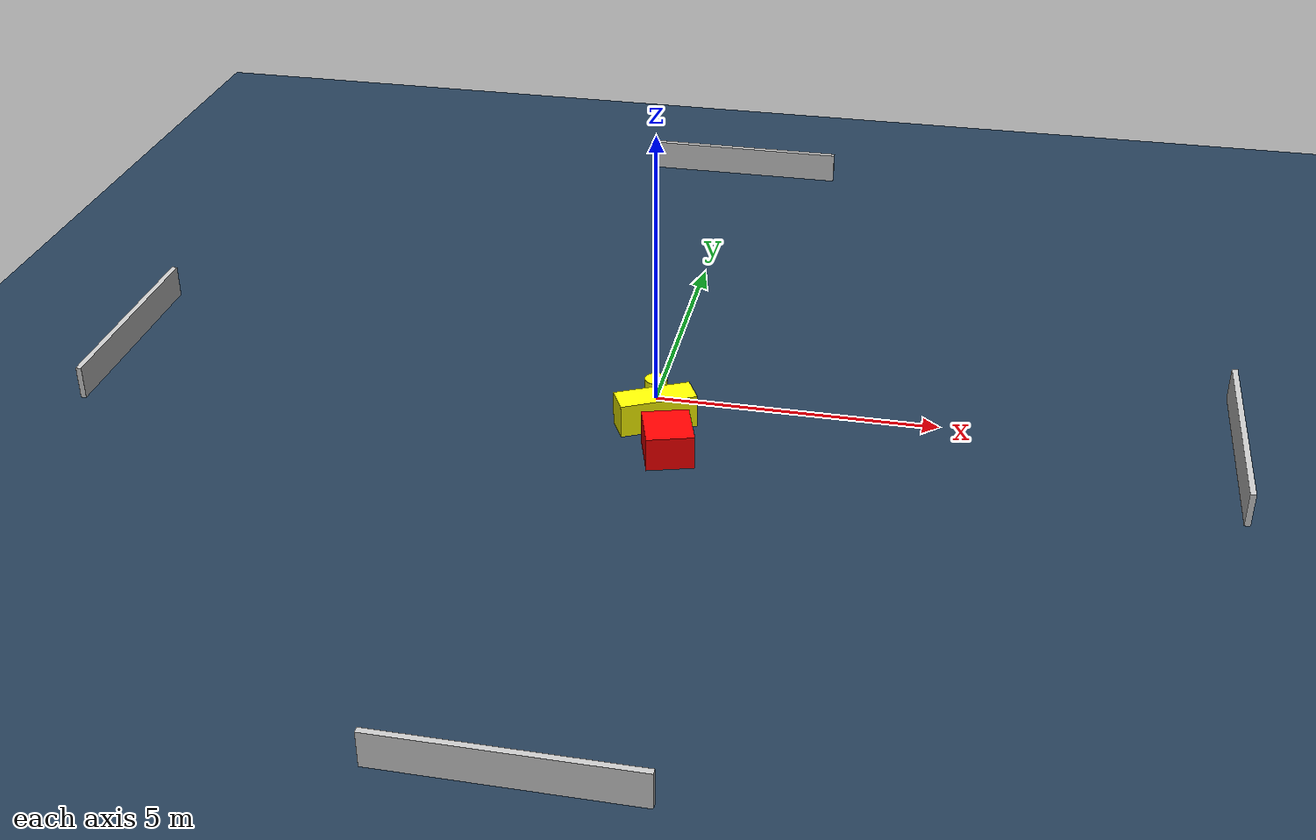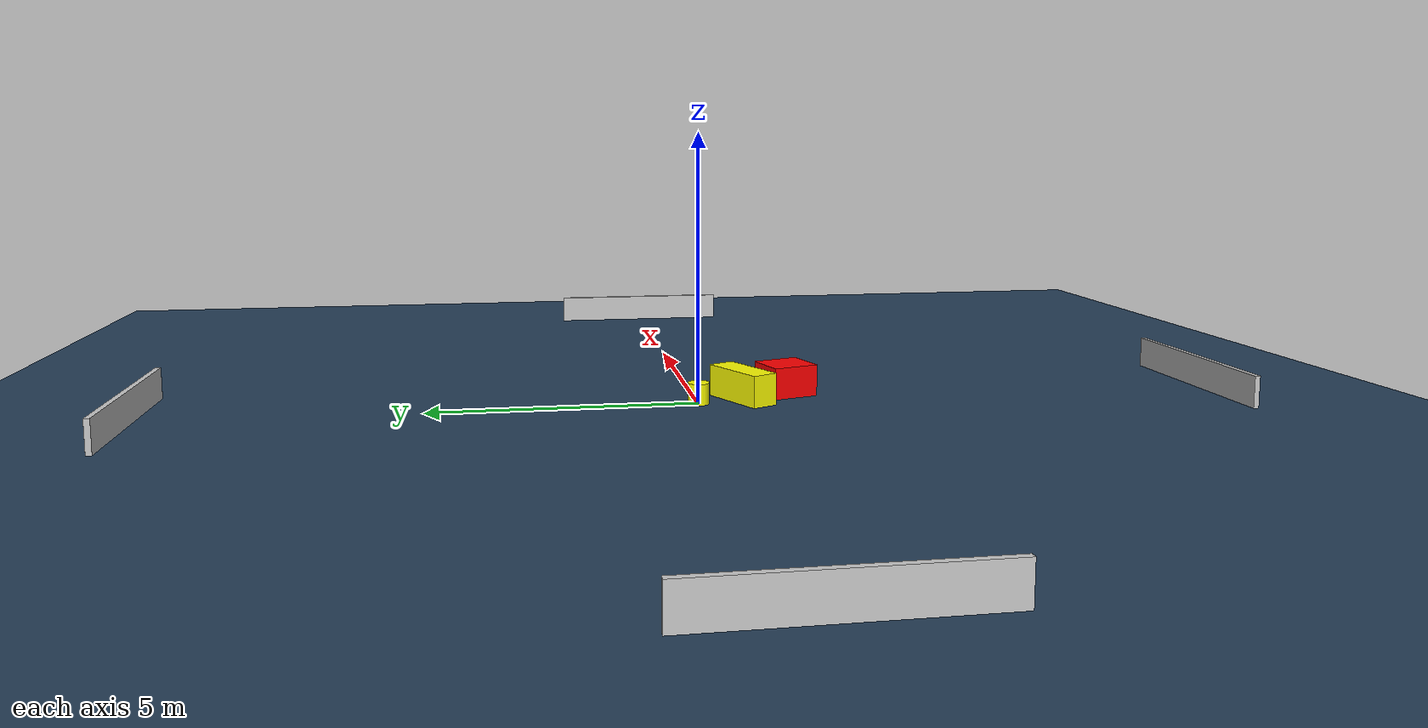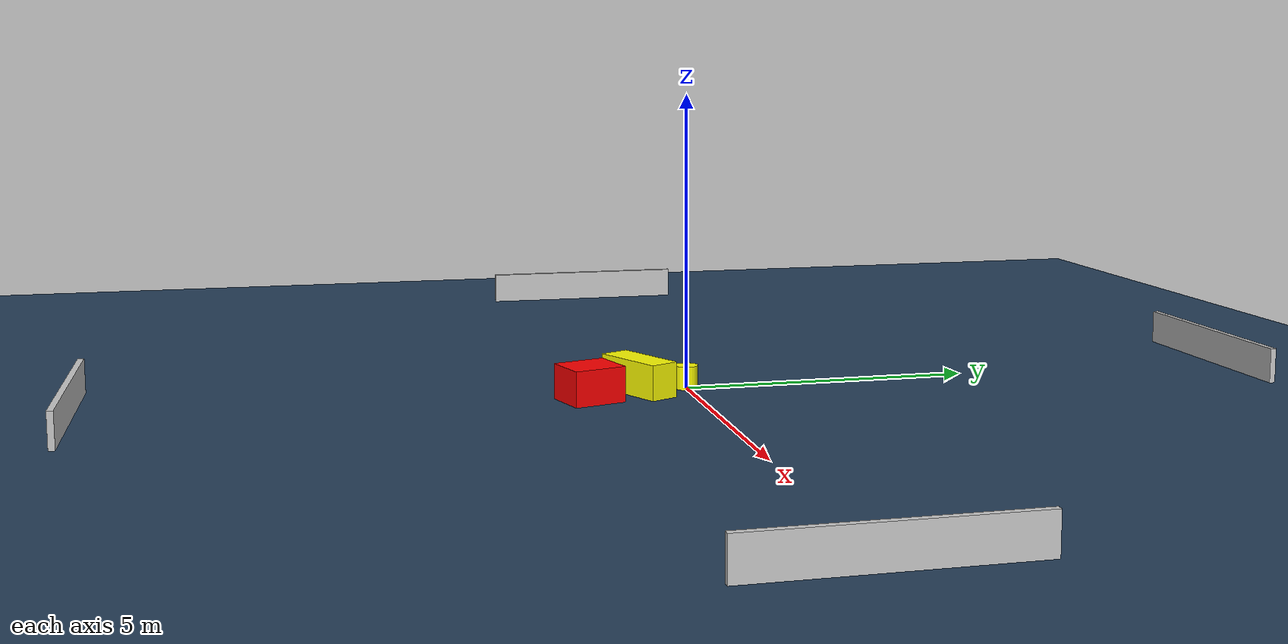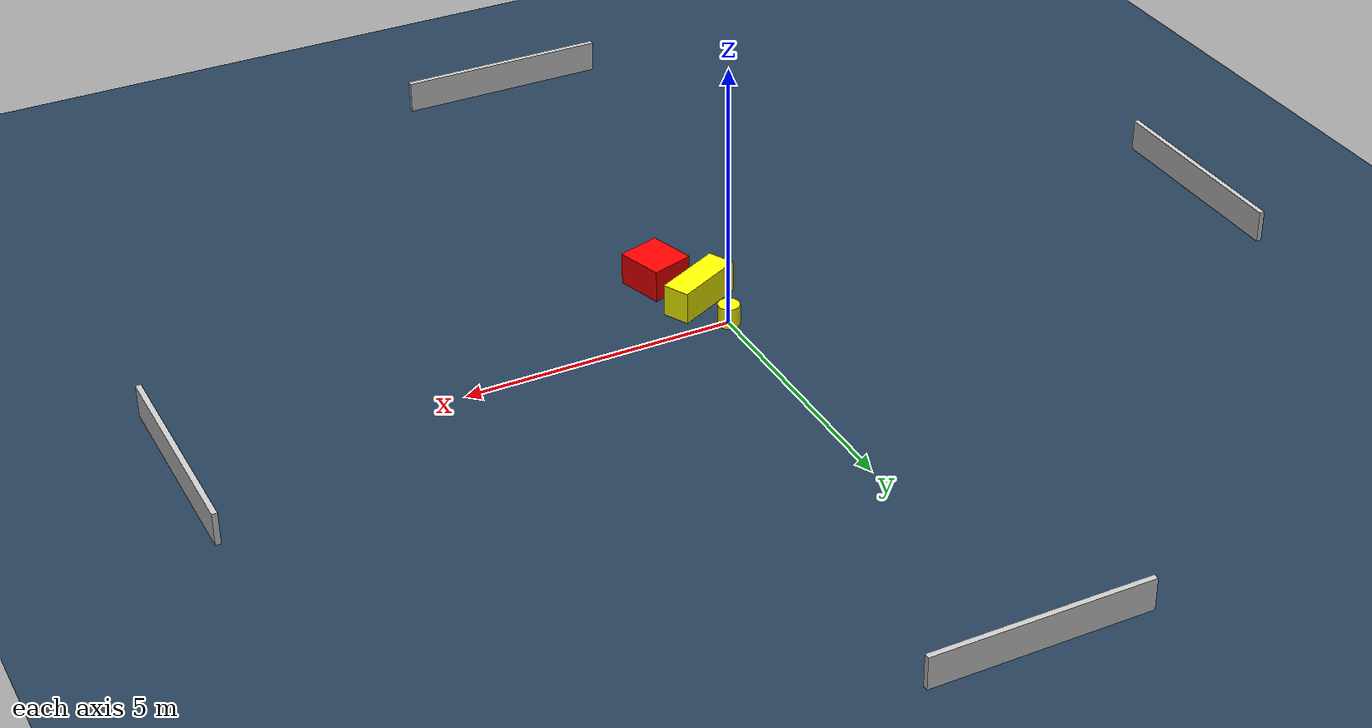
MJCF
<?xml version="1.0" ?>
<mujoco model="generated_environment">
  <option timestep="0.01" integrator="RK4" cone="elliptic"/>
  <default>
    <geom density="1"/>
  </default>
  <asset>
    <texture builtin="gradient" height="3072" name="skybox" rgb1="0.3 0.5 0.7" rgb2="0 0 0" type="skybox" width="512"/>
    <texture builtin="checker" height="300" name="groundplane" rgb1="0.2 0.3 0.4" rgb2="0.1 0.2 0.3" type="2d" width="300"/>
    <material name="groundplane" reflectance="0.2" texrepeat="5 5" texture="groundplane"/>
  </asset>
  <worldbody>
    <light dir="0 0 -1" directional="true" pos="0 0 1.5"/>
    <geom condim="3" friction="0.5 0.005 0.001" material="groundplane" name="floor" pos="0 0 0" size="0 0 0.05" type="plane"/>
    <body name="walls">
      <geom name="wall_1" condim="4" pos="-10.0 0.0 0.3" rgba="0.800000011920929 0.800000011920929 0.800000011920929 1.0" size="0.05 2.0 0.3" type="box"/>
      <geom name="wall_2" condim="4" pos="10.0 0.0 0.3" rgba="0.800000011920929 0.800000011920929 0.800000011920929 1.0" size="0.05 2.0 0.3" type="box"/>
      <geom name="wall_3" condim="4" pos="0.0 -10.0 0.3" rgba="0.800000011920929 0.800000011920929 0.800000011920929 1.0" size="2.0 0.05 0.3" type="box"/>
      <geom name="wall_4" condim="4" pos="0.0 10.0 0.3" rgba="0.800000011920929 0.800000011920929 0.800000011920929 1.0" size="2.0 0.05 0.3" type="box"/>
    </body>
    <body name="robot">
      <joint name="joint_x" type="slide" pos="0 0 0" axis="1 0 0"/>
      <joint name="joint_y" type="slide" pos="0 0 0" axis="0 1 0"/>
      <geom name="robot" type="cylinder" pos="0.0 0.0 0.2" size="0.2 0.2 0.0" mass="5.0" friction="1.0 0.005 0.0001" condim="4" rgba="1.0 1.0 0.0 1.0"/>
    </body>
    <body name="obstacle_1_movable">
      <geom name="obstacle_1_movable" condim="4" pos="0.1581226294139798 -0.8605614761148974 0.3" euler="0 0 116.59343643766172" friction="0.0 0.005 0.001" rgba="1.0 1.0 0.0 1.0" size="0.25707586495344503 0.6808911010195464 0.3" type="box" mass="0.1"/>
      <joint type="free"/>
    </body>
    <body name="obstacle_2_static">
      <geom name="obstacle_2_static" condim="4" pos="0.5572749875882906 -1.7811104087285823 0.3" euler="0 0 16.894500290875772" friction="0.0 0.005 0.001" rgba="1.0 0.0 0.0 1.0" size="0.4075000879609968 0.45311603622981456 0.3" type="box"/>
    </body>
  </worldbody>
  <actuator>
    <motor name="actuator_x" joint="joint_x" gear="1" ctrlrange="-1 1"/>
    <motor name="actuator_y" joint="joint_y" gear="1" ctrlrange="-1 1"/>
  </actuator>
</mujoco>
